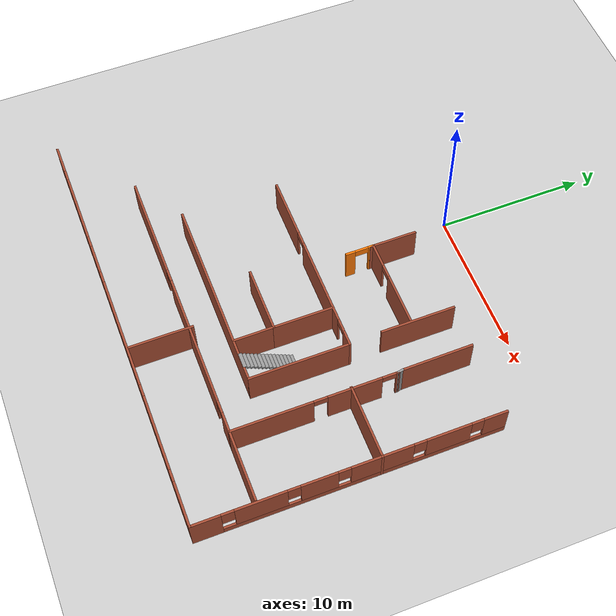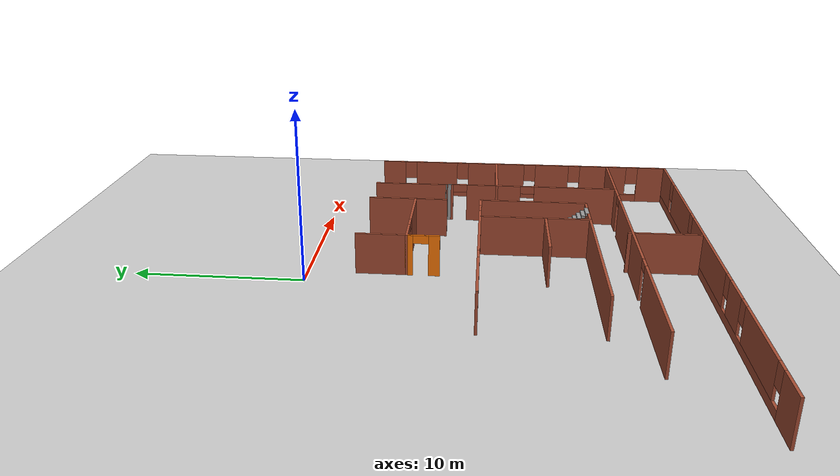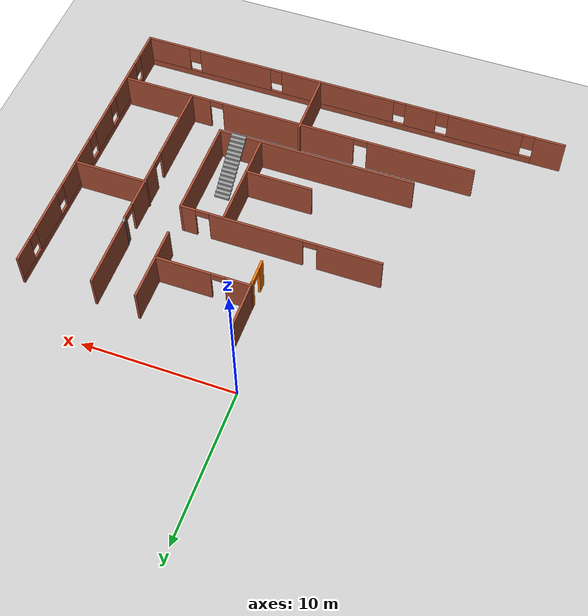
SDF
<sdf version="1.7">
 <world name="default">
  <model name="ground_plane">
   <static>1</static>
   <link name="link">
    <collision name="collision">
     <geometry><plane><normal>0 0 1</normal><size>100 100</size></plane></geometry>
     <surface>
      <contact><collide_bitmask>65535</collide_bitmask></contact>
      <friction><ode><mu>100</mu><mu2>50</mu2></ode></friction>
     </surface>
    </collision>
    <visual name="visual">
     <cast_shadows>0</cast_shadows>
     <geometry><plane><normal>0 0 1</normal><size>100 100</size></plane></geometry>
     <material>
      <script><uri>file://media/materials/scripts/gazebo.material</uri><name>Gazebo/Grey</name></script>
     </material>
    </visual>
   </link>
  </model>
  <model name="dh-hdh">
   <pose>0.666955 -11.441 0 0 -0 0</pose>
   <link name="Stairs_3">
    <visual name="Stairs_3_Visual_0">
     <pose>5.54539 -1.78177 0.083333 0 -0 0</pose>
     <geometry><box><size>1 0.233333 0.166667</size></box></geometry>
     <material>
      <script><uri>file://media/materials/scripts/gazebo.material</uri><name>Gazebo/Grey</name></script>
      <ambient>1 1 1 1</ambient>
     </material>
     <meta><layer>0</layer></meta>
    </visual>
    <collision name="Stairs_3_Collision_0">
     <geometry><box><size>1 0.233333 0.166667</size></box></geometry>
     <pose>5.54539 -1.78177 0.083333 0 -0 0</pose>
    </collision>
    <visual name="Stairs_3_Visual_1">
     <pose>5.54539 -2.0151 0.25 0 -0 0</pose>
     <geometry><box><size>1 0.233333 0.166667</size></box></geometry>
     <material>
      <script><uri>file://media/materials/scripts/gazebo.material</uri><name>Gazebo/Grey</name></script>
      <ambient>1 1 1 1</ambient>
     </material>
     <meta><layer>0</layer></meta>
    </visual>
    <collision name="Stairs_3_Collision_1">
     <geometry><box><size>1 0.233333 0.166667</size></box></geometry>
     <pose>5.54539 -2.0151 0.25 0 -0 0</pose>
    </collision>
    <visual name="Stairs_3_Visual_2">
     <pose>5.54539 -2.24844 0.416667 0 -0 0</pose>
     <geometry><box><size>1 0.233333 0.166667</size></box></geometry>
     <material>
      <script><uri>file://media/materials/scripts/gazebo.material</uri><name>Gazebo/Grey</name></script>
      <ambient>1 1 1 1</ambient>
     </material>
     <meta><layer>0</layer></meta>
    </visual>
    <collision name="Stairs_3_Collision_2">
     <geometry><box><size>1 0.233333 0.166667</size></box></geometry>
     <pose>5.54539 -2.24844 0.416667 0 -0 0</pose>
    </collision>
    <visual name="Stairs_3_Visual_3">
     <pose>5.54539 -2.48177 0.583333 0 -0 0</pose>
     <geometry><box><size>1 0.233333 0.166667</size></box></geometry>
     <material>
      <script><uri>file://media/materials/scripts/gazebo.material</uri><name>Gazebo/Grey</name></script>
      <ambient>1 1 1 1</ambient>
     </material>
     <meta><layer>0</layer></meta>
    </visual>
    <collision name="Stairs_3_Collision_3">
     <geometry><box><size>1 0.233333 0.166667</size></box></geometry>
     <pose>5.54539 -2.48177 0.583333 0 -0 0</pose>
    </collision>
    <visual name="Stairs_3_Visual_4">
     <pose>5.54539 -2.7151 0.75 0 -0 0</pose>
     <geometry><box><size>1 0.233333 0.166667</size></box></geometry>
     <material>
      <script><uri>file://media/materials/scripts/gazebo.material</uri><name>Gazebo/Grey</name></script>
      <ambient>1 1 1 1</ambient>
     </material>
     <meta><layer>0</layer></meta>
    </visual>
    <collision name="Stairs_3_Collision_4">
     <geometry><box><size>1 0.233333 0.166667</size></box></geometry>
     <pose>5.54539 -2.7151 0.75 0 -0 0</pose>
    </collision>
    <visual name="Stairs_3_Visual_5">
     <pose>5.54539 -2.94843 0.916667 0 -0 0</pose>
     <geometry><box><size>1 0.233333 0.166667</size></box></geometry>
     <material>
      <script><uri>file://media/materials/scripts/gazebo.material</uri><name>Gazebo/Grey</name></script>
      <ambient>1 1 1 1</ambient>
     </material>
     <meta><layer>0</layer></meta>
    </visual>
    <collision name="Stairs_3_Collision_5">
     <geometry><box><size>1 0.233333 0.166667</size></box></geometry>
     <pose>5.54539 -2.94843 0.916667 0 -0 0</pose>
    </collision>
    <visual name="Stairs_3_Visual_6">
     <pose>5.54539 -3.18177 1.08333 0 -0 0</pose>
     <geometry><box><size>1 0.233333 0.166667</size></box></geometry>
     <material>
      <script><uri>file://media/materials/scripts/gazebo.material</uri><name>Gazebo/Grey</name></script>
      <ambient>1 1 1 1</ambient>
     </material>
     <meta><layer>0</layer></meta>
    </visual>
    <collision name="Stairs_3_Collision_6">
     <geometry><box><size>1 0.233333 0.166667</size></box></geometry>
     <pose>5.54539 -3.18177 1.08333 0 -0 0</pose>
    </collision>
    <visual name="Stairs_3_Visual_7">
     <pose>5.54539 -3.4151 1.25 0 -0 0</pose>
     <geometry><box><size>1 0.233333 0.166667</size></box></geometry>
     <material>
      <script><uri>file://media/materials/scripts/gazebo.material</uri><name>Gazebo/Grey</name></script>
      <ambient>1 1 1 1</ambient>
     </material>
     <meta><layer>0</layer></meta>
    </visual>
    <collision name="Stairs_3_Collision_7">
     <geometry><box><size>1 0.233333 0.166667</size></box></geometry>
     <pose>5.54539 -3.4151 1.25 0 -0 0</pose>
    </collision>
    <visual name="Stairs_3_Visual_8">
     <pose>5.54539 -3.64844 1.41667 0 -0 0</pose>
     <geometry><box><size>1 0.233333 0.166667</size></box></geometry>
     <material>
      <script><uri>file://media/materials/scripts/gazebo.material</uri><name>Gazebo/Grey</name></script>
      <ambient>1 1 1 1</ambient>
     </material>
     <meta><layer>0</layer></meta>
    </visual>
    <collision name="Stairs_3_Collision_8">
     <geometry><box><size>1 0.233333 0.166667</size></box></geometry>
     <pose>5.54539 -3.64844 1.41667 0 -0 0</pose>
    </collision>
    <visual name="Stairs_3_Visual_9">
     <pose>5.54539 -3.88177 1.58333 0 -0 0</pose>
     <geometry><box><size>1 0.233333 0.166667</size></box></geometry>
     <material>
      <script><uri>file://media/materials/scripts/gazebo.material</uri><name>Gazebo/Grey</name></script>
      <ambient>1 1 1 1</ambient>
     </material>
     <meta><layer>0</layer></meta>
    </visual>
    <collision name="Stairs_3_Collision_9">
     <geometry><box><size>1 0.233333 0.166667</size></box></geometry>
     <pose>5.54539 -3.88177 1.58333 0 -0 0</pose>
    </collision>
    <visual name="Stairs_3_Visual_10">
     <pose>5.54539 -4.1151 1.75 0 -0 0</pose>
     <geometry><box><size>1 0.233333 0.166667</size></box></geometry>
     <material>
      <script><uri>file://media/materials/scripts/gazebo.material</uri><name>Gazebo/Grey</name></script>
      <ambient>1 1 1 1</ambient>
     </material>
     <meta><layer>0</layer></meta>
    </visual>
    <collision name="Stairs_3_Collision_10">
     <geometry><box><size>1 0.233333 0.166667</size></box></geometry>
     <pose>5.54539 -4.1151 1.75 0 -0 0</pose>
    </collision>
    <visual name="Stairs_3_Visual_11">
     <pose>5.54539 -4.34844 1.91667 0 -0 0</pose>
     <geometry><box><size>1 0.233333 0.166667</size></box></geometry>
     <material>
      <script><uri>file://media/materials/scripts/gazebo.material</uri><name>Gazebo/Grey</name></script>
      <ambient>1 1 1 1</ambient>
     </material>
     <meta><layer>0</layer></meta>
    </visual>
    <collision name="Stairs_3_Collision_11">
     <geometry><box><size>1 0.233333 0.166667</size></box></geometry>
     <pose>5.54539 -4.34844 1.91667 0 -0 0</pose>
    </collision>
    <visual name="Stairs_3_Visual_12">
     <pose>5.54539 -4.58177 2.08333 0 -0 0</pose>
     <geometry><box><size>1 0.233333 0.166667</size></box></geometry>
     <material>
      <script><uri>file://media/materials/scripts/gazebo.material</uri><name>Gazebo/Grey</name></script>
      <ambient>1 1 1 1</ambient>
     </material>
     <meta><layer>0</layer></meta>
    </visual>
    <collision name="Stairs_3_Collision_12">
     <geometry><box><size>1 0.233333 0.166667</size></box></geometry>
     <pose>5.54539 -4.58177 2.08333 0 -0 0</pose>
    </collision>
    <visual name="Stairs_3_Visual_13">
     <pose>5.54539 -4.8151 2.25 0 -0 0</pose>
     <geometry><box><size>1 0.233333 0.166667</size></box></geometry>
     <material>
      <script><uri>file://media/materials/scripts/gazebo.material</uri><name>Gazebo/Grey</name></script>
      <ambient>1 1 1 1</ambient>
     </material>
     <meta><layer>0</layer></meta>
    </visual>
    <collision name="Stairs_3_Collision_13">
     <geometry><box><size>1 0.233333 0.166667</size></box></geometry>
     <pose>5.54539 -4.8151 2.25 0 -0 0</pose>
    </collision>
    <visual name="Stairs_3_Visual_14">
     <pose>5.54539 -5.04843 2.41667 0 -0 0</pose>
     <geometry><box><size>1 0.233333 0.166667</size></box></geometry>
     <material>
      <script><uri>file://media/materials/scripts/gazebo.material</uri><name>Gazebo/Grey</name></script>
      <ambient>1 1 1 1</ambient>
     </material>
     <meta><layer>0</layer></meta>
    </visual>
    <collision name="Stairs_3_Collision_14">
     <geometry><box><size>1 0.233333 0.166667</size></box></geometry>
     <pose>5.54539 -5.04843 2.41667 0 -0 0</pose>
    </collision>
   </link>
   <link name="Wall_27">
    <pose>0.025415 -11.366 0 0 -0 0</pose>
    <visual name="Wall_27_Visual_0">
     <pose>-13.6119 0 1.25 0 -0 0</pose>
     <geometry><box><size>2.02613 0.15 2.5</size></box></geometry>
     <material>
      <script><uri>file://media/materials/scripts/gazebo.material</uri><name>Gazebo/Bricks</name></script>
      <ambient>0.466667 0.462745 0.482353 1</ambient>
     </material>
     <meta><layer>0</layer></meta>
    </visual>
    <collision name="Wall_27_Collision_0">
     <geometry><box><size>2.02613 0.15 2.5</size></box></geometry>
     <pose>-13.6119 0 1.25 0 -0 0</pose>
    </collision>
    <visual name="Wall_27_Visual_1">
     <pose>1.01306 0 0.25 0 -0 0</pose>
     <geometry><box><size>27.2239 0.15 0.5</size></box></geometry>
     <material>
      <script><uri>file://media/materials/scripts/gazebo.material</uri><name>Gazebo/Bricks</name></script>
      <ambient>0.466667 0.462745 0.482353 1</ambient>
     </material>
     <meta><layer>0</layer></meta>
    </visual>
    <collision name="Wall_27_Collision_1">
     <geometry><box><size>27.2239 0.15 0.5</size></box></geometry>
     <pose>1.01306 0 0.25 0 -0 0</pose>
    </collision>
    <visual name="Wall_27_Visual_2">
     <pose>-9.30313 0 1.5 0 -0 0</pose>
     <geometry><box><size>4.99147 0.15 2</size></box></geometry>
     <material>
      <script><uri>file://media/materials/scripts/gazebo.material</uri><name>Gazebo/Bricks</name></script>
      <ambient>0.466667 0.462745 0.482353 1</ambient>
     </material>
     <meta><layer>0</layer></meta>
    </visual>
    <collision name="Wall_27_Collision_2">
     <geometry><box><size>4.99147 0.15 2</size></box></geometry>
     <pose>-9.30313 0 1.5 0 -0 0</pose>
    </collision>
    <visual name="Wall_27_Visual_3">
     <pose>-4.93579 0 1.5 0 -0 0</pose>
     <geometry><box><size>2.14321 0.15 2</size></box></geometry>
     <material>
      <script><uri>file://media/materials/scripts/gazebo.material</uri><name>Gazebo/Bricks</name></script>
      <ambient>0.466667 0.462745 0.482353 1</ambient>
     </material>
     <meta><layer>0</layer></meta>
    </visual>
    <collision name="Wall_27_Collision_3">
     <geometry><box><size>2.14321 0.15 2</size></box></geometry>
     <pose>-4.93579 0 1.5 0 -0 0</pose>
    </collision>
    <visual name="Wall_27_Visual_4">
     <pose>0.896215 0 1.5 0 -0 0</pose>
     <geometry><box><size>7.92081 0.15 2</size></box></geometry>
     <material>
      <script><uri>file://media/materials/scripts/gazebo.material</uri><name>Gazebo/Bricks</name></script>
      <ambient>0.466667 0.462745 0.482353 1</ambient>
     </material>
     <meta><layer>0</layer></meta>
    </visual>
    <collision name="Wall_27_Collision_4">
     <geometry><box><size>7.92081 0.15 2</size></box></geometry>
     <pose>0.896215 0 1.5 0 -0 0</pose>
    </collision>
    <visual name="Wall_27_Visual_5">
     <pose>8.22872 0 1.5 0 -0 0</pose>
     <geometry><box><size>5.14421 0.15 2</size></box></geometry>
     <material>
      <script><uri>file://media/materials/scripts/gazebo.material</uri><name>Gazebo/Bricks</name></script>
      <ambient>0.466667 0.462745 0.482353 1</ambient>
     </material>
     <meta><layer>0</layer></meta>
    </visual>
    <collision name="Wall_27_Collision_5">
     <geometry><box><size>5.14421 0.15 2</size></box></geometry>
     <pose>8.22872 0 1.5 0 -0 0</pose>
    </collision>
    <visual name="Wall_27_Visual_6">
     <pose>13.1129 0 1.5 0 -0 0</pose>
     <geometry><box><size>3.02417 0.15 2</size></box></geometry>
     <material>
      <script><uri>file://media/materials/scripts/gazebo.material</uri><name>Gazebo/Bricks</name></script>
      <ambient>0.466667 0.462745 0.482353 1</ambient>
     </material>
     <meta><layer>0</layer></meta>
    </visual>
    <collision name="Wall_27_Collision_6">
     <geometry><box><size>3.02417 0.15 2</size></box></geometry>
     <pose>13.1129 0 1.5 0 -0 0</pose>
    </collision>
    <visual name="Wall_27_Visual_7">
     <pose>-12.1989 0 1.9 0 -0 0</pose>
     <geometry><box><size>0.8 0.15 1.2</size></box></geometry>
     <material>
      <script><uri>file://media/materials/scripts/gazebo.material</uri><name>Gazebo/Bricks</name></script>
      <ambient>0.466667 0.462745 0.482353 1</ambient>
     </material>
     <meta><layer>0</layer></meta>
    </visual>
    <collision name="Wall_27_Collision_7">
     <geometry><box><size>0.8 0.15 1.2</size></box></geometry>
     <pose>-12.1989 0 1.9 0 -0 0</pose>
    </collision>
    <visual name="Wall_27_Visual_8">
     <pose>-6.4074 0 1.9 0 -0 0</pose>
     <geometry><box><size>0.8 0.15 1.2</size></box></geometry>
     <material>
      <script><uri>file://media/materials/scripts/gazebo.material</uri><name>Gazebo/Bricks</name></script>
      <ambient>0.466667 0.462745 0.482353 1</ambient>
     </material>
     <meta><layer>0</layer></meta>
    </visual>
    <collision name="Wall_27_Collision_8">
     <geometry><box><size>0.8 0.15 1.2</size></box></geometry>
     <pose>-6.4074 0 1.9 0 -0 0</pose>
    </collision>
    <visual name="Wall_27_Visual_9">
     <pose>-3.46419 0 1.9 0 -0 0</pose>
     <geometry><box><size>0.8 0.15 1.2</size></box></geometry>
     <material>
      <script><uri>file://media/materials/scripts/gazebo.material</uri><name>Gazebo/Bricks</name></script>
      <ambient>0.466667 0.462745 0.482353 1</ambient>
     </material>
     <meta><layer>0</layer></meta>
    </visual>
    <collision name="Wall_27_Collision_9">
     <geometry><box><size>0.8 0.15 1.2</size></box></geometry>
     <pose>-3.46419 0 1.9 0 -0 0</pose>
    </collision>
    <visual name="Wall_27_Visual_10">
     <pose>5.25662 0 1.9 0 -0 0</pose>
     <geometry><box><size>0.8 0.15 1.2</size></box></geometry>
     <material>
      <script><uri>file://media/materials/scripts/gazebo.material</uri><name>Gazebo/Bricks</name></script>
      <ambient>0.466667 0.462745 0.482353 1</ambient>
     </material>
     <meta><layer>0</layer></meta>
    </visual>
    <collision name="Wall_27_Collision_10">
     <geometry><box><size>0.8 0.15 1.2</size></box></geometry>
     <pose>5.25662 0 1.9 0 -0 0</pose>
    </collision>
    <visual name="Wall_27_Visual_11">
     <pose>11.2008 0 1.9 0 -0 0</pose>
     <geometry><box><size>0.8 0.15 1.2</size></box></geometry>
     <material>
      <script><uri>file://media/materials/scripts/gazebo.material</uri><name>Gazebo/Bricks</name></script>
      <ambient>0.466667 0.462745 0.482353 1</ambient>
     </material>
     <meta><layer>0</layer></meta>
    </visual>
    <collision name="Wall_27_Collision_11">
     <geometry><box><size>0.8 0.15 1.2</size></box></geometry>
     <pose>11.2008 0 1.9 0 -0 0</pose>
    </collision>
   </link>
   <link name="Wall_28">
    <pose>14.5754 -1.44103 0 0 -0 1.5708</pose>
    <visual name="Wall_28_Visual_0">
     <pose>-9.03458 0 1.25 0 -0 0</pose>
     <geometry><box><size>1.93084 0.15 2.5</size></box></geometry>
     <material>
      <script><uri>file://media/materials/scripts/gazebo.material</uri><name>Gazebo/Bricks</name></script>
      <ambient>0.466667 0.462745 0.482353 1</ambient>
     </material>
     <meta><layer>0</layer></meta>
    </visual>
    <collision name="Wall_28_Collision_0">
     <geometry><box><size>1.93084 0.15 2.5</size></box></geometry>
     <pose>-9.03458 0 1.25 0 -0 0</pose>
    </collision>
    <visual name="Wall_28_Visual_1">
     <pose>0.965422 0 0.25 0 -0 0</pose>
     <geometry><box><size>18.0692 0.15 0.5</size></box></geometry>
     <material>
      <script><uri>file://media/materials/scripts/gazebo.material</uri><name>Gazebo/Bricks</name></script>
      <ambient>0.466667 0.462745 0.482353 1</ambient>
     </material>
     <meta><layer>0</layer></meta>
    </visual>
    <collision name="Wall_28_Collision_1">
     <geometry><box><size>18.0692 0.15 0.5</size></box></geometry>
     <pose>0.965422 0 0.25 0 -0 0</pose>
    </collision>
    <visual name="Wall_28_Visual_2">
     <pose>-5.64647 0 1.5 0 -0 0</pose>
     <geometry><box><size>3.24536 0.15 2</size></box></geometry>
     <material>
      <script><uri>file://media/materials/scripts/gazebo.material</uri><name>Gazebo/Bricks</name></script>
      <ambient>0.466667 0.462745 0.482353 1</ambient>
     </material>
     <meta><layer>0</layer></meta>
    </visual>
    <collision name="Wall_28_Collision_2">
     <geometry><box><size>3.24536 0.15 2</size></box></geometry>
     <pose>-5.64647 0 1.5 0 -0 0</pose>
    </collision>
    <visual name="Wall_28_Visual_3">
     <pose>-2.05518 0 1.5 0 -0 0</pose>
     <geometry><box><size>2.33722 0.15 2</size></box></geometry>
     <material>
      <script><uri>file://media/materials/scripts/gazebo.material</uri><name>Gazebo/Bricks</name></script>
      <ambient>0.466667 0.462745 0.482353 1</ambient>
     </material>
     <meta><layer>0</layer></meta>
    </visual>
    <collision name="Wall_28_Collision_3">
     <geometry><box><size>2.33722 0.15 2</size></box></geometry>
     <pose>-2.05518 0 1.5 0 -0 0</pose>
    </collision>
    <visual name="Wall_28_Visual_4">
     <pose>1.90762 0 1.5 0 -0 0</pose>
     <geometry><box><size>3.98839 0.15 2</size></box></geometry>
     <material>
      <script><uri>file://media/materials/scripts/gazebo.material</uri><name>Gazebo/Bricks</name></script>
      <ambient>0.466667 0.462745 0.482353 1</ambient>
     </material>
     <meta><layer>0</layer></meta>
    </visual>
    <collision name="Wall_28_Collision_4">
     <geometry><box><size>3.98839 0.15 2</size></box></geometry>
     <pose>1.90762 0 1.5 0 -0 0</pose>
    </collision>
    <visual name="Wall_28_Visual_5">
     <pose>6.15938 0 1.5 0 -0 0</pose>
     <geometry><box><size>2.91513 0.15 2</size></box></geometry>
     <material>
      <script><uri>file://media/materials/scripts/gazebo.material</uri><name>Gazebo/Bricks</name></script>
      <ambient>0.466667 0.462745 0.482353 1</ambient>
     </material>
     <meta><layer>0</layer></meta>
    </visual>
    <collision name="Wall_28_Collision_5">
     <geometry><box><size>2.91513 0.15 2</size></box></geometry>
     <pose>6.15938 0 1.5 0 -0 0</pose>
    </collision>
    <visual name="Wall_28_Visual_6">
     <pose>9.20847 0 1.5 0 -0 0</pose>
     <geometry><box><size>1.58306 0.15 2</size></box></geometry>
     <material>
      <script><uri>file://media/materials/scripts/gazebo.material</uri><name>Gazebo/Bricks</name></script>
      <ambient>0.466667 0.462745 0.482353 1</ambient>
     </material>
     <meta><layer>0</layer></meta>
    </visual>
    <collision name="Wall_28_Collision_6">
     <geometry><box><size>1.58306 0.15 2</size></box></geometry>
     <pose>9.20847 0 1.5 0 -0 0</pose>
    </collision>
    <visual name="Wall_28_Visual_7">
     <pose>-7.66916 0 1.9 0 -0 0</pose>
     <geometry><box><size>0.8 0.15 1.2</size></box></geometry>
     <material>
      <script><uri>file://media/materials/scripts/gazebo.material</uri><name>Gazebo/Bricks</name></script>
      <ambient>0.466667 0.462745 0.482353 1</ambient>
     </material>
     <meta><layer>0</layer></meta>
    </visual>
    <collision name="Wall_28_Collision_7">
     <geometry><box><size>0.8 0.15 1.2</size></box></geometry>
     <pose>-7.66916 0 1.9 0 -0 0</pose>
    </collision>
    <visual name="Wall_28_Visual_8">
     <pose>-3.62379 0 1.9 0 -0 0</pose>
     <geometry><box><size>0.8 0.15 1.2</size></box></geometry>
     <material>
      <script><uri>file://media/materials/scripts/gazebo.material</uri><name>Gazebo/Bricks</name></script>
      <ambient>0.466667 0.462745 0.482353 1</ambient>
     </material>
     <meta><layer>0</layer></meta>
    </visual>
    <collision name="Wall_28_Collision_8">
     <geometry><box><size>0.8 0.15 1.2</size></box></geometry>
     <pose>-3.62379 0 1.9 0 -0 0</pose>
    </collision>
    <visual name="Wall_28_Visual_9">
     <pose>-0.486573 0 1.9 0 -0 0</pose>
     <geometry><box><size>0.8 0.15 1.2</size></box></geometry>
     <material>
      <script><uri>file://media/materials/scripts/gazebo.material</uri><name>Gazebo/Bricks</name></script>
      <ambient>0.466667 0.462745 0.482353 1</ambient>
     </material>
     <meta><layer>0</layer></meta>
    </visual>
    <collision name="Wall_28_Collision_9">
     <geometry><box><size>0.8 0.15 1.2</size></box></geometry>
     <pose>-0.486573 0 1.9 0 -0 0</pose>
    </collision>
    <visual name="Wall_28_Visual_10">
     <pose>4.30182 0 1.9 0 -0 0</pose>
     <geometry><box><size>0.8 0.15 1.2</size></box></geometry>
     <material>
      <script><uri>file://media/materials/scripts/gazebo.material</uri><name>Gazebo/Bricks</name></script>
      <ambient>0.466667 0.462745 0.482353 1</ambient>
     </material>
     <meta><layer>0</layer></meta>
    </visual>
    <collision name="Wall_28_Collision_10">
     <geometry><box><size>0.8 0.15 1.2</size></box></geometry>
     <pose>4.30182 0 1.9 0 -0 0</pose>
    </collision>
    <visual name="Wall_28_Visual_11">
     <pose>8.01694 0 1.9 0 -0 0</pose>
     <geometry><box><size>0.8 0.15 1.2</size></box></geometry>
     <material>
      <script><uri>file://media/materials/scripts/gazebo.material</uri><name>Gazebo/Bricks</name></script>
      <ambient>0.466667 0.462745 0.482353 1</ambient>
     </material>
     <meta><layer>0</layer></meta>
    </visual>
    <collision name="Wall_28_Collision_11">
     <geometry><box><size>0.8 0.15 1.2</size></box></geometry>
     <pose>8.01694 0 1.9 0 -0 0</pose>
    </collision>
   </link>
   <link name="Wall_32">
    <pose>0.116267 -7.34918 0 0 -0 0</pose>
    <visual name="Wall_32_Visual_0">
     <pose>-6.16143 0 1.25 0 -0 0</pose>
     <geometry><box><size>7.17714 0.15 2.5</size></box></geometry>
     <material>
      <script><uri>file://media/materials/scripts/gazebo.material</uri><name>Gazebo/Bricks</name></script>
      <ambient>0.996078 0.47451 0.0196078 1</ambient>
     </material>
     <meta><layer>0</layer></meta>
    </visual>
    <collision name="Wall_32_Collision_0">
     <geometry><box><size>7.17714 0.15 2.5</size></box></geometry>
     <pose>-6.16143 0 1.25 0 -0 0</pose>
    </collision>
    <visual name="Wall_32_Visual_1">
     <pose>2.89166 0 1.25 0 -0 0</pose>
     <geometry><box><size>9.12904 0.15 2.5</size></box></geometry>
     <material>
      <script><uri>file://media/materials/scripts/gazebo.material</uri><name>Gazebo/Bricks</name></script>
      <ambient>0.996078 0.47451 0.0196078 1</ambient>
     </material>
     <meta><layer>0</layer></meta>
    </visual>
    <collision name="Wall_32_Collision_1">
     <geometry><box><size>9.12904 0.15 2.5</size></box></geometry>
     <pose>2.89166 0 1.25 0 -0 0</pose>
    </collision>
    <visual name="Wall_32_Visual_2">
     <pose>9.05309 0 1.25 0 -0 0</pose>
     <geometry><box><size>1.39382 0.15 2.5</size></box></geometry>
     <material>
      <script><uri>file://media/materials/scripts/gazebo.material</uri><name>Gazebo/Bricks</name></script>
      <ambient>0.996078 0.47451 0.0196078 1</ambient>
     </material>
     <meta><layer>0</layer></meta>
    </visual>
    <collision name="Wall_32_Collision_2">
     <geometry><box><size>1.39382 0.15 2.5</size></box></geometry>
     <pose>9.05309 0 1.25 0 -0 0</pose>
    </collision>
    <visual name="Wall_32_Visual_3">
     <pose>-2.12286 0 2.25 0 -0 0</pose>
     <geometry><box><size>0.9 0.15 0.5</size></box></geometry>
     <material>
      <script><uri>file://media/materials/scripts/gazebo.material</uri><name>Gazebo/Bricks</name></script>
      <ambient>0.996078 0.47451 0.0196078 1</ambient>
     </material>
     <meta><layer>0</layer></meta>
    </visual>
    <collision name="Wall_32_Collision_3">
     <geometry><box><size>0.9 0.15 0.5</size></box></geometry>
     <pose>-2.12286 0 2.25 0 -0 0</pose>
    </collision>
    <visual name="Wall_32_Visual_4">
     <pose>7.90618 0 2.25 0 -0 0</pose>
     <geometry><box><size>0.9 0.15 0.5</size></box></geometry>
     <material>
      <script><uri>file://media/materials/scripts/gazebo.material</uri><name>Gazebo/Bricks</name></script>
      <ambient>0.996078 0.47451 0.0196078 1</ambient>
     </material>
     <meta><layer>0</layer></meta>
    </visual>
    <collision name="Wall_32_Collision_4">
     <geometry><box><size>0.9 0.15 0.5</size></box></geometry>
     <pose>7.90618 0 2.25 0 -0 0</pose>
    </collision>
   </link>
   <link name="Wall_33">
    <pose>9.79127 -1.92418 0 0 -0 1.5708</pose>
    <visual name="Wall_33_Visual_0">
     <pose>-2.80029 0 1.25 0 -0 0</pose>
     <geometry><box><size>5.39943 0.15 2.5</size></box></geometry>
     <material>
      <script><uri>file://media/materials/scripts/gazebo.material</uri><name>Gazebo/Bricks</name></script>
      <ambient>0.996078 0.47451 0.0196078 1</ambient>
     </material>
     <meta><layer>0</layer></meta>
    </visual>
    <collision name="Wall_33_Collision_0">
     <geometry><box><size>5.39943 0.15 2.5</size></box></geometry>
     <pose>-2.80029 0 1.25 0 -0 0</pose>
    </collision>
    <visual name="Wall_33_Visual_1">
     <pose>2.57855 0 1.25 0 -0 0</pose>
     <geometry><box><size>3.55825 0.15 2.5</size></box></geometry>
     <material>
      <script><uri>file://media/materials/scripts/gazebo.material</uri><name>Gazebo/Bricks</name></script>
      <ambient>0.996078 0.47451 0.0196078 1</ambient>
     </material>
     <meta><layer>0</layer></meta>
    </visual>
    <collision name="Wall_33_Collision_1">
     <geometry><box><size>3.55825 0.15 2.5</size></box></geometry>
     <pose>2.57855 0 1.25 0 -0 0</pose>
    </collision>
    <visual name="Wall_33_Visual_2">
     <pose>5.37884 0 1.25 0 -0 0</pose>
     <geometry><box><size>0.24232 0.15 2.5</size></box></geometry>
     <material>
      <script><uri>file://media/materials/scripts/gazebo.material</uri><name>Gazebo/Bricks</name></script>
      <ambient>0.996078 0.47451 0.0196078 1</ambient>
     </material>
     <meta><layer>0</layer></meta>
    </visual>
    <collision name="Wall_33_Collision_2">
     <geometry><box><size>0.24232 0.15 2.5</size></box></geometry>
     <pose>5.37884 0 1.25 0 -0 0</pose>
    </collision>
    <visual name="Wall_33_Visual_3">
     <pose>0.349428 0 2.25 0 -0 0</pose>
     <geometry><box><size>0.9 0.15 0.5</size></box></geometry>
     <material>
      <script><uri>file://media/materials/scripts/gazebo.material</uri><name>Gazebo/Bricks</name></script>
      <ambient>0.996078 0.47451 0.0196078 1</ambient>
     </material>
     <meta><layer>0</layer></meta>
    </visual>
    <collision name="Wall_33_Collision_3">
     <geometry><box><size>0.9 0.15 0.5</size></box></geometry>
     <pose>0.349428 0 2.25 0 -0 0</pose>
    </collision>
    <visual name="Wall_33_Visual_4">
     <pose>4.80768 0 2.25 0 -0 0</pose>
     <geometry><box><size>0.9 0.15 0.5</size></box></geometry>
     <material>
      <script><uri>file://media/materials/scripts/gazebo.material</uri><name>Gazebo/Bricks</name></script>
      <ambient>0.996078 0.47451 0.0196078 1</ambient>
     </material>
     <meta><layer>0</layer></meta>
    </visual>
    <collision name="Wall_33_Collision_4">
     <geometry><box><size>0.9 0.15 0.5</size></box></geometry>
     <pose>4.80768 0 2.25 0 -0 0</pose>
    </collision>
   </link>
   <link name="Wall_34">
    <collision name="Wall_34_Collision">
     <geometry><box><size>0.437183 0.15 2.5</size></box></geometry>
     <pose>0 0 1.25 0 -0 0</pose>
    </collision>
    <visual name="Wall_34_Visual">
     <pose>0 0 1.25 0 -0 0</pose>
     <geometry><box><size>0.437183 0.15 2.5</size></box></geometry>
     <material>
      <script><uri>file://media/materials/scripts/gazebo.material</uri><name>Gazebo/Grey</name></script>
      <ambient>1 1 1 1</ambient>
     </material>
     <meta><layer>0</layer></meta>
    </visual>
    <pose>9.76068 3.64111 0 0 -0 1.78548</pose>
   </link>
   <link name="Wall_40">
    <collision name="Wall_40_Collision">
     <geometry><box><size>4.80758 0.15 2.5</size></box></geometry>
     <pose>0 0 1.25 0 -0 0</pose>
    </collision>
    <visual name="Wall_40_Visual">
     <pose>0 0 1.25 0 -0 0</pose>
     <geometry><box><size>4.80758 0.15 2.5</size></box></geometry>
     <material>
      <script><uri>file://media/materials/scripts/gazebo.material</uri><name>Gazebo/Bricks</name></script>
      <ambient>0.996078 0.47451 0.0196078 1</ambient>
     </material>
     <meta><layer>0</layer></meta>
    </visual>
    <pose>9.71538 6.11015 0 0 -0 1.57711</pose>
   </link>
   <link name="Wall_42">
    <collision name="Wall_42_Collision">
     <geometry><box><size>5 0.15 2.5</size></box></geometry>
     <pose>0 0 1.25 0 -0 0</pose>
    </collision>
    <visual name="Wall_42_Visual">
     <pose>0 0 1.25 0 -0 0</pose>
     <geometry><box><size>5 0.15 2.5</size></box></geometry>
     <material>
      <script><uri>file://media/materials/scripts/gazebo.material</uri><name>Gazebo/Bricks</name></script>
      <ambient>0.996078 0.47451 0.0196078 1</ambient>
     </material>
     <meta><layer>0</layer></meta>
    </visual>
    <pose>6.79742 6.09993 0 0 -0 -1.5708</pose>
   </link>
   <link name="Wall_46">
    <collision name="Wall_46_Collision">
     <geometry><box><size>13.25 0.15 2.5</size></box></geometry>
     <pose>0 0 1.25 0 -0 0</pose>
    </collision>
    <visual name="Wall_46_Visual">
     <pose>0 0 1.25 0 -0 0</pose>
     <geometry><box><size>13.25 0.15 2.5</size></box></geometry>
     <material>
      <script><uri>file://media/materials/scripts/gazebo.material</uri><name>Gazebo/Bricks</name></script>
      <ambient>0.996078 0.47451 0.0196078 1</ambient>
     </material>
     <meta><layer>0</layer></meta>
    </visual>
    <pose>0.332017 -5.11879 0 0 -0 0</pose>
   </link>
   <link name="Wall_47">
    <collision name="Wall_47_Collision">
     <geometry><box><size>6.75 0.15 2.5</size></box></geometry>
     <pose>0 0 1.25 0 -0 0</pose>
    </collision>
    <visual name="Wall_47_Visual">
     <pose>0 0 1.25 0 -0 0</pose>
     <geometry><box><size>6.75 0.15 2.5</size></box></geometry>
     <material>
      <script><uri>file://media/materials/scripts/gazebo.material</uri><name>Gazebo/Bricks</name></script>
      <ambient>0.996078 0.47451 0.0196078 1</ambient>
     </material>
     <meta><layer>0</layer></meta>
    </visual>
    <pose>6.88202 -1.81879 0 0 -0 1.5708</pose>
   </link>
   <link name="Wall_48">
    <pose>0.332017 1.48121 0 0 -0 3.14159</pose>
    <visual name="Wall_48_Visual_0">
     <pose>-6.09095 0 1.25 0 -0 0</pose>
     <geometry><box><size>1.0681 0.15 2.5</size></box></geometry>
     <material>
      <script><uri>file://media/materials/scripts/gazebo.material</uri><name>Gazebo/Bricks</name></script>
      <ambient>0.996078 0.47451 0.0196078 1</ambient>
     </material>
     <meta><layer>0</layer></meta>
    </visual>
    <collision name="Wall_48_Collision_0">
     <geometry><box><size>1.0681 0.15 2.5</size></box></geometry>
     <pose>-6.09095 0 1.25 0 -0 0</pose>
    </collision>
    <visual name="Wall_48_Visual_1">
     <pose>-1.5667 0 1.25 0 -0 0</pose>
     <geometry><box><size>6.1804 0.15 2.5</size></box></geometry>
     <material>
      <script><uri>file://media/materials/scripts/gazebo.material</uri><name>Gazebo/Bricks</name></script>
      <ambient>0.996078 0.47451 0.0196078 1</ambient>
     </material>
     <meta><layer>0</layer></meta>
    </visual>
    <collision name="Wall_48_Collision_1">
     <geometry><box><size>6.1804 0.15 2.5</size></box></geometry>
     <pose>-1.5667 0 1.25 0 -0 0</pose>
    </collision>
    <visual name="Wall_48_Visual_2">
     <pose>4.52425 0 1.25 0 -0 0</pose>
     <geometry><box><size>4.2015 0.15 2.5</size></box></geometry>
     <material>
      <script><uri>file://media/materials/scripts/gazebo.material</uri><name>Gazebo/Bricks</name></script>
      <ambient>0.996078 0.47451 0.0196078 1</ambient>
     </material>
     <meta><layer>0</layer></meta>
    </visual>
    <collision name="Wall_48_Collision_2">
     <geometry><box><size>4.2015 0.15 2.5</size></box></geometry>
     <pose>4.52425 0 1.25 0 -0 0</pose>
    </collision>
    <visual name="Wall_48_Visual_3">
     <pose>-5.1069 0 2.25 0 -0 0</pose>
     <geometry><box><size>0.9 0.15 0.5</size></box></geometry>
     <material>
      <script><uri>file://media/materials/scripts/gazebo.material</uri><name>Gazebo/Bricks</name></script>
      <ambient>0.996078 0.47451 0.0196078 1</ambient>
     </material>
     <meta><layer>0</layer></meta>
    </visual>
    <collision name="Wall_48_Collision_3">
     <geometry><box><size>0.9 0.15 0.5</size></box></geometry>
     <pose>-5.1069 0 2.25 0 -0 0</pose>
    </collision>
    <visual name="Wall_48_Visual_4">
     <pose>1.9735 0 2.25 0 -0 0</pose>
     <geometry><box><size>0.9 0.15 0.5</size></box></geometry>
     <material>
      <script><uri>file://media/materials/scripts/gazebo.material</uri><name>Gazebo/Bricks</name></script>
      <ambient>0.996078 0.47451 0.0196078 1</ambient>
     </material>
     <meta><layer>0</layer></meta>
    </visual>
    <collision name="Wall_48_Collision_4">
     <geometry><box><size>0.9 0.15 0.5</size></box></geometry>
     <pose>1.9735 0 2.25 0 -0 0</pose>
    </collision>
   </link>
   <link name="Wall_52">
    <collision name="Wall_52_Collision">
     <geometry><box><size>5 0.15 2.5</size></box></geometry>
     <pose>0 0 1.25 0 -0 0</pose>
    </collision>
    <visual name="Wall_52_Visual">
     <pose>0 0 1.25 0 -0 0</pose>
     <geometry><box><size>5 0.15 2.5</size></box></geometry>
     <material>
      <script><uri>file://media/materials/scripts/gazebo.material</uri><name>Gazebo/Bricks</name></script>
      <ambient>1 1 1 1</ambient>
     </material>
     <meta><layer>0</layer></meta>
    </visual>
    <pose>12.151 0.44258 0 0 -0 3.14159</pose>
   </link>
   <link name="Wall_54">
    <pose>0.639104 4.70317 0 0 -0 1.5708</pose>
    <visual name="Wall_54_Visual_0">
     <pose>-0.671951 0 1.25 0 -0 0</pose>
     <geometry><box><size>0.656098 0.15 2.5</size></box></geometry>
     <material>
      <script><uri>file://media/materials/scripts/gazebo.material</uri><name>Gazebo/Grey</name></script>
      <ambient>0.996078 0.47451 0.0196078 1</ambient>
     </material>
     <meta><layer>0</layer></meta>
    </visual>
    <collision name="Wall_54_Collision_0">
     <geometry><box><size>0.656098 0.15 2.5</size></box></geometry>
     <pose>-0.671951 0 1.25 0 -0 0</pose>
    </collision>
    <visual name="Wall_54_Visual_1">
     <pose>0.778049 0 1.25 0 -0 0</pose>
     <geometry><box><size>0.443902 0.15 2.5</size></box></geometry>
     <material>
      <script><uri>file://media/materials/scripts/gazebo.material</uri><name>Gazebo/Grey</name></script>
      <ambient>0.996078 0.47451 0.0196078 1</ambient>
     </material>
     <meta><layer>0</layer></meta>
    </visual>
    <collision name="Wall_54_Collision_1">
     <geometry><box><size>0.443902 0.15 2.5</size></box></geometry>
     <pose>0.778049 0 1.25 0 -0 0</pose>
    </collision>
    <visual name="Wall_54_Visual_2">
     <pose>0.106098 0 2.25 0 -0 0</pose>
     <geometry><box><size>0.9 0.15 0.5</size></box></geometry>
     <material>
      <script><uri>file://media/materials/scripts/gazebo.material</uri><name>Gazebo/Grey</name></script>
      <ambient>0.996078 0.47451 0.0196078 1</ambient>
     </material>
     <meta><layer>0</layer></meta>
    </visual>
    <collision name="Wall_54_Collision_2">
     <geometry><box><size>0.9 0.15 0.5</size></box></geometry>
     <pose>0.106098 0 2.25 0 -0 0</pose>
    </collision>
   </link>
   <link name="Wall_55">
    <pose>3.6891 5.62817 0 0 -0 0</pose>
    <visual name="Wall_55_Visual_0">
     <pose>-2.26348 0 1.25 0 -0 0</pose>
     <geometry><box><size>1.72304 0.15 2.5</size></box></geometry>
     <material>
      <script><uri>file://media/materials/scripts/gazebo.material</uri><name>Gazebo/Bricks</name></script>
      <ambient>0.996078 0.47451 0.0196078 1</ambient>
     </material>
     <meta><layer>0</layer></meta>
    </visual>
    <collision name="Wall_55_Collision_0">
     <geometry><box><size>1.72304 0.15 2.5</size></box></geometry>
     <pose>-2.26348 0 1.25 0 -0 0</pose>
    </collision>
    <visual name="Wall_55_Visual_1">
     <pose>1.31152 0 1.25 0 -0 0</pose>
     <geometry><box><size>3.62696 0.15 2.5</size></box></geometry>
     <material>
      <script><uri>file://media/materials/scripts/gazebo.material</uri><name>Gazebo/Bricks</name></script>
      <ambient>0.996078 0.47451 0.0196078 1</ambient>
     </material>
     <meta><layer>0</layer></meta>
    </visual>
    <collision name="Wall_55_Collision_1">
     <geometry><box><size>3.62696 0.15 2.5</size></box></geometry>
     <pose>1.31152 0 1.25 0 -0 0</pose>
    </collision>
    <visual name="Wall_55_Visual_2">
     <pose>-0.951961 0 2.25 0 -0 0</pose>
     <geometry><box><size>0.9 0.15 0.5</size></box></geometry>
     <material>
      <script><uri>file://media/materials/scripts/gazebo.material</uri><name>Gazebo/Bricks</name></script>
      <ambient>0.996078 0.47451 0.0196078 1</ambient>
     </material>
     <meta><layer>0</layer></meta>
    </visual>
    <collision name="Wall_55_Collision_2">
     <geometry><box><size>0.9 0.15 0.5</size></box></geometry>
     <pose>-0.951961 0 2.25 0 -0 0</pose>
    </collision>
   </link>
   <link name="Wall_57">
    <collision name="Wall_57_Collision">
     <geometry><box><size>3.25 0.15 2.5</size></box></geometry>
     <pose>0 0 1.25 0 -0 0</pose>
    </collision>
    <visual name="Wall_57_Visual">
     <pose>0 0 1.25 0 -0 0</pose>
     <geometry><box><size>3.25 0.15 2.5</size></box></geometry>
     <material>
      <script><uri>file://media/materials/scripts/gazebo.material</uri><name>Gazebo/Bricks</name></script>
      <ambient>0.996078 0.47451 0.0196078 1</ambient>
     </material>
     <meta><layer>0</layer></meta>
    </visual>
    <pose>0.649049 6.99104 0 0 -0 1.5708</pose>
   </link>
   <link name="Wall_68">
    <collision name="Wall_68_Collision">
     <geometry><box><size>4.25 0.15 2.5</size></box></geometry>
     <pose>0 0 1.25 0 -0 0</pose>
    </collision>
    <visual name="Wall_68_Visual">
     <pose>0 0 1.25 0 -0 0</pose>
     <geometry><box><size>4.25 0.15 2.5</size></box></geometry>
     <material>
      <script><uri>file://media/materials/scripts/gazebo.material</uri><name>Gazebo/Bricks</name></script>
      <ambient>1 1 1 1</ambient>
     </material>
     <meta><layer>0</layer></meta>
    </visual>
    <pose>2.14488 -9.18492 0 0 -0 -1.5708</pose>
   </link>
   <link name="Wall_70">
    <collision name="Wall_70_Collision">
     <geometry><box><size>4.75 0.15 2.5</size></box></geometry>
     <pose>0 0 1.25 0 -0 0</pose>
    </collision>
    <visual name="Wall_70_Visual">
     <pose>0 0 1.25 0 -0 0</pose>
     <geometry><box><size>4.75 0.15 2.5</size></box></geometry>
     <material>
      <script><uri>file://media/materials/scripts/gazebo.material</uri><name>Gazebo/Bricks</name></script>
      <ambient>1 1 1 1</ambient>
     </material>
     <meta><layer>0</layer></meta>
    </visual>
    <pose>12.0913 -7.34918 0 0 -0 0</pose>
   </link>
   <link name="Wall_80">
    <collision name="Wall_80_Collision">
     <geometry><box><size>4.5 0.15 2.5</size></box></geometry>
     <pose>0 0 1.25 0 -0 0</pose>
    </collision>
    <visual name="Wall_80_Visual">
     <pose>0 0 1.25 0 -0 0</pose>
     <geometry><box><size>4.5 0.15 2.5</size></box></geometry>
     <material>
      <script><uri>file://media/materials/scripts/gazebo.material</uri><name>Gazebo/Bricks</name></script>
      <ambient>1 1 1 1</ambient>
     </material>
     <meta><layer>0</layer></meta>
    </visual>
    <pose>1.86442 -2.47385 0 0 -0 0</pose>
   </link>
   <link name="Wall_81">
    <collision name="Wall_81_Collision">
     <geometry><box><size>4 0.15 2.5</size></box></geometry>
     <pose>0 0 1.25 0 -0 0</pose>
    </collision>
    <visual name="Wall_81_Visual">
     <pose>0 0 1.25 0 -0 0</pose>
     <geometry><box><size>4 0.15 2.5</size></box></geometry>
     <material>
      <script><uri>file://media/materials/scripts/gazebo.material</uri><name>Gazebo/Bricks</name></script>
      <ambient>1 1 1 1</ambient>
     </material>
     <meta><layer>0</layer></meta>
    </visual>
    <pose>4.03942 -0.548851 0 0 -0 1.5708</pose>
   </link>
   <link name="Wall_83">
    <collision name="Wall_83_Collision">
     <geometry><box><size>2.75 0.15 2.5</size></box></geometry>
     <pose>0 0 1.25 0 -0 0</pose>
    </collision>
    <visual name="Wall_83_Visual">
     <pose>0 0 1.25 0 -0 0</pose>
     <geometry><box><size>2.75 0.15 2.5</size></box></geometry>
     <material>
      <script><uri>file://media/materials/scripts/gazebo.material</uri><name>Gazebo/Bricks</name></script>
      <ambient>1 1 1 1</ambient>
     </material>
     <meta><layer>0</layer></meta>
    </visual>
    <pose>4.03942 -3.77385 0 0 -0 -1.5708</pose>
   </link>
   <static>1</static>
  </model>
 </world>
</sdf>
